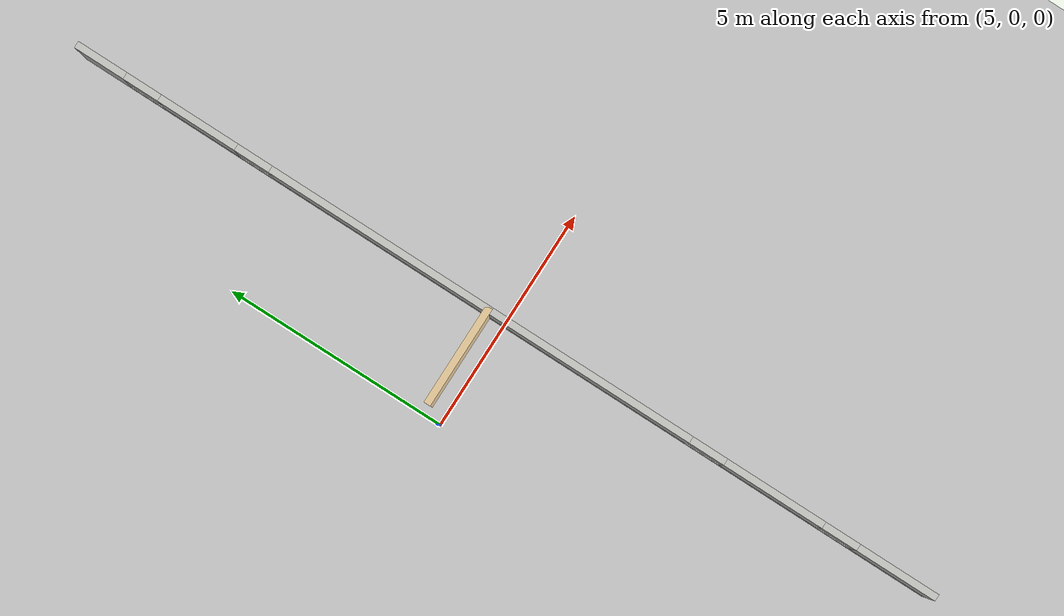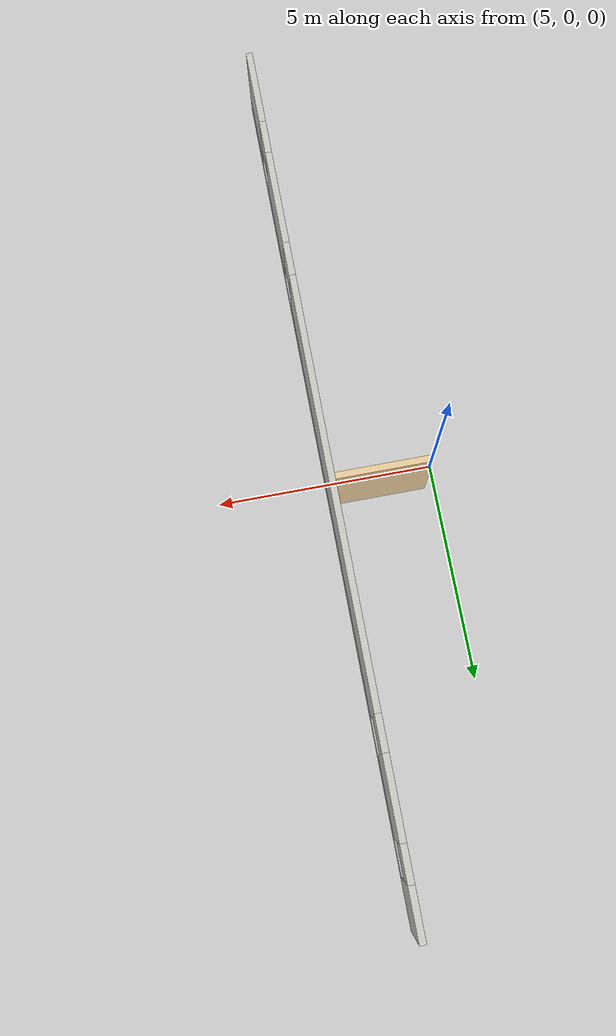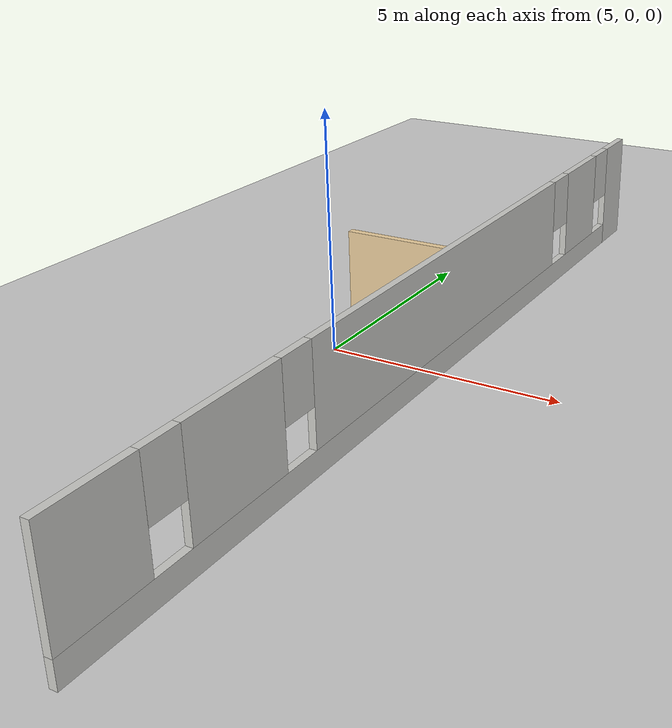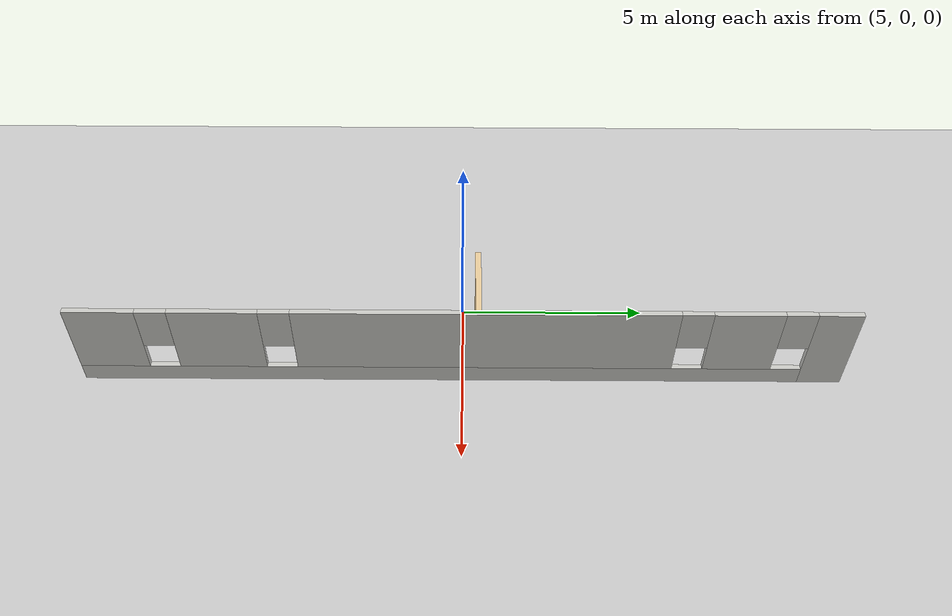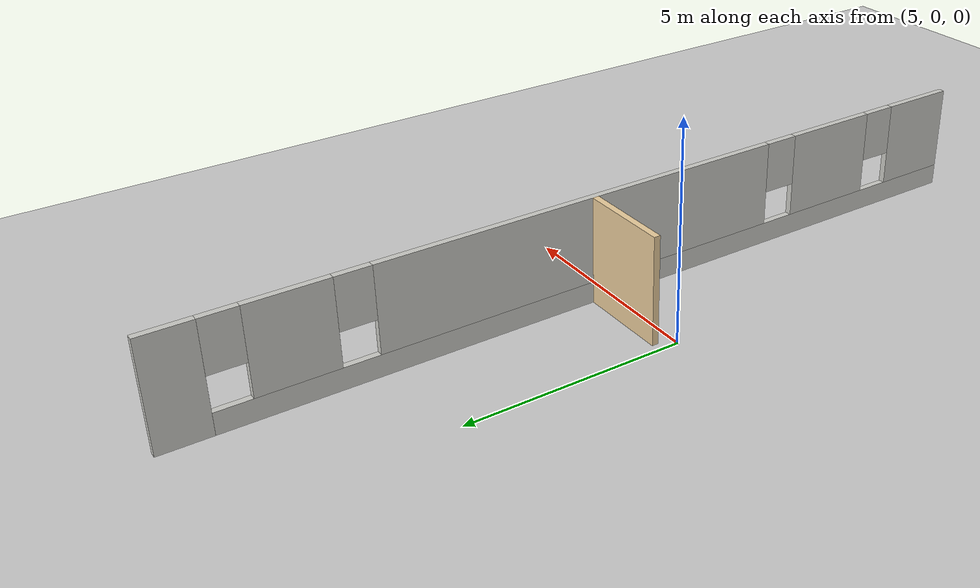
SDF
<sdf version="1.6">
 <world name="default">
  <model name="ground_plane">
   <static>1</static>
   <link name="link">
    <collision name="collision">
     <geometry><plane><normal>0 0 1</normal><size>100 100</size></plane></geometry>
     <surface>
      <contact><collide_bitmask>65535</collide_bitmask></contact>
      <friction><ode><mu>100</mu><mu2>50</mu2></ode></friction>
     </surface>
    </collision>
    <visual name="visual">
     <cast_shadows>0</cast_shadows>
     <geometry><plane><normal>0 0 1</normal><size>100 100</size></plane></geometry>
     <material>
      <script><uri>file://media/materials/scripts/gazebo.material</uri><name>Gazebo/Grey</name></script>
     </material>
    </visual>
   </link>
  </model>
  <model name="AutowayTower">
   <link name="Wall_0">
    <pose>0.012137 7.42869 0 0 -0 0</pose>
    <visual name="Wall_0_Visual_0">
     <pose>-9.43131 0 1.25 0 -0 0</pose>
     <geometry><box><size>1.13738 0.15 2.5</size></box></geometry>
     <material>
      <script><uri>file://media/materials/scripts/gazebo.material</uri><name>Gazebo/CeilingTiled</name></script>
      <ambient>1 1 1 1</ambient>
      <shader type="pixel"/>
      <diffuse>1 1 1 1</diffuse>
      <specular>0 0 0 1</specular>
      <emissive>0 0 0 1</emissive>
     </material>
     <meta><layer>0</layer></meta>
    </visual>
    <visual name="Wall_0_Visual_1">
     <pose>0.56869 0 0.25 0 -0 0</pose>
     <geometry><box><size>18.8626 0.15 0.5</size></box></geometry>
     <material>
      <script><uri>file://media/materials/scripts/gazebo.material</uri><name>Gazebo/CeilingTiled</name></script>
      <ambient>1 1 1 1</ambient>
      <shader type="pixel"/>
      <diffuse>1 1 1 1</diffuse>
      <specular>0 0 0 1</specular>
      <emissive>0 0 0 1</emissive>
     </material>
     <meta><layer>0</layer></meta>
    </visual>
    <visual name="Wall_0_Visual_2">
     <pose>-7.16836 0 1.5 0 -0 0</pose>
     <geometry><box><size>1.78853 0.15 2</size></box></geometry>
     <material>
      <script><uri>file://media/materials/scripts/gazebo.material</uri><name>Gazebo/CeilingTiled</name></script>
      <ambient>1 1 1 1</ambient>
      <shader type="pixel"/>
      <diffuse>1 1 1 1</diffuse>
      <specular>0 0 0 1</specular>
      <emissive>0 0 0 1</emissive>
     </material>
     <meta><layer>0</layer></meta>
    </visual>
    <visual name="Wall_0_Visual_3">
     <pose>-0.583346 0 1.5 0 -0 0</pose>
     <geometry><box><size>9.78149 0.15 2</size></box></geometry>
     <material>
      <script><uri>file://media/materials/scripts/gazebo.material</uri><name>Gazebo/CeilingTiled</name></script>
      <ambient>1 1 1 1</ambient>
      <shader type="pixel"/>
      <diffuse>1 1 1 1</diffuse>
      <specular>0 0 0 1</specular>
      <emissive>0 0 0 1</emissive>
     </material>
     <meta><layer>0</layer></meta>
    </visual>
    <visual name="Wall_0_Visual_4">
     <pose>6.24652 0 1.5 0 -0 0</pose>
     <geometry><box><size>2.27825 0.15 2</size></box></geometry>
     <material>
      <script><uri>file://media/materials/scripts/gazebo.material</uri><name>Gazebo/CeilingTiled</name></script>
      <ambient>1 1 1 1</ambient>
      <shader type="pixel"/>
      <diffuse>1 1 1 1</diffuse>
      <specular>0 0 0 1</specular>
      <emissive>0 0 0 1</emissive>
     </material>
     <meta><layer>0</layer></meta>
    </visual>
    <visual name="Wall_0_Visual_5">
     <pose>9.09282 0 1.5 0 -0 0</pose>
     <geometry><box><size>1.81435 0.15 2</size></box></geometry>
     <material>
      <script><uri>file://media/materials/scripts/gazebo.material</uri><name>Gazebo/CeilingTiled</name></script>
      <ambient>1 1 1 1</ambient>
      <shader type="pixel"/>
      <diffuse>1 1 1 1</diffuse>
      <specular>0 0 0 1</specular>
      <emissive>0 0 0 1</emissive>
     </material>
     <meta><layer>0</layer></meta>
    </visual>
    <visual name="Wall_0_Visual_6">
     <pose>-8.46262 0 1.9 0 -0 0</pose>
     <geometry><box><size>0.8 0.15 1.2</size></box></geometry>
     <material>
      <script><uri>file://media/materials/scripts/gazebo.material</uri><name>Gazebo/CeilingTiled</name></script>
      <ambient>1 1 1 1</ambient>
      <shader type="pixel"/>
      <diffuse>1 1 1 1</diffuse>
      <specular>0 0 0 1</specular>
      <emissive>0 0 0 1</emissive>
     </material>
     <meta><layer>0</layer></meta>
    </visual>
    <visual name="Wall_0_Visual_7">
     <pose>-5.87409 0 1.9 0 -0 0</pose>
     <geometry><box><size>0.8 0.15 1.2</size></box></geometry>
     <material>
      <script><uri>file://media/materials/scripts/gazebo.material</uri><name>Gazebo/CeilingTiled</name></script>
      <ambient>1 1 1 1</ambient>
      <shader type="pixel"/>
      <diffuse>1 1 1 1</diffuse>
      <specular>0 0 0 1</specular>
      <emissive>0 0 0 1</emissive>
     </material>
     <meta><layer>0</layer></meta>
    </visual>
    <visual name="Wall_0_Visual_8">
     <pose>4.7074 0 1.9 0 -0 0</pose>
     <geometry><box><size>0.8 0.15 1.2</size></box></geometry>
     <material>
      <script><uri>file://media/materials/scripts/gazebo.material</uri><name>Gazebo/CeilingTiled</name></script>
      <ambient>1 1 1 1</ambient>
      <shader type="pixel"/>
      <diffuse>1 1 1 1</diffuse>
      <specular>0 0 0 1</specular>
      <emissive>0 0 0 1</emissive>
     </material>
     <meta><layer>0</layer></meta>
    </visual>
    <visual name="Wall_0_Visual_9">
     <pose>7.78565 0 1.9 0 -0 0</pose>
     <geometry><box><size>0.8 0.15 1.2</size></box></geometry>
     <material>
      <script><uri>file://media/materials/scripts/gazebo.material</uri><name>Gazebo/CeilingTiled</name></script>
      <ambient>1 1 1 1</ambient>
      <shader type="pixel"/>
      <diffuse>1 1 1 1</diffuse>
      <specular>0 0 0 1</specular>
      <emissive>0 0 0 1</emissive>
     </material>
     <meta><layer>0</layer></meta>
    </visual>
    <collision name="Wall_0_Collision_6">
     <pose>-8.46262 0 1.9 0 -0 0</pose>
     <geometry><box><size>0.8 0.15 1.2</size></box></geometry>
     <surface>
      <friction>
       <ode><mu>1</mu><mu2>1</mu2><fdir1>0 0 0</fdir1><slip1>0</slip1><slip2>0</slip2></ode>
       <torsional>
        <coefficient>1</coefficient>
        <patch_radius>0</patch_radius>
        <surface_radius>0</surface_radius>
        <use_patch_radius>1</use_patch_radius>
        <ode><slip>0</slip></ode>
       </torsional>
      </friction>
      <bounce><restitution_coefficient>0</restitution_coefficient><threshold>1e+06</threshold></bounce>
      <contact>
       <collide_without_contact>0</collide_without_contact>
       <collide_without_contact_bitmask>1</collide_without_contact_bitmask>
       <collide_bitmask>1</collide_bitmask>
       <ode>
        <soft_cfm>0</soft_cfm>
        <soft_erp>0.2</soft_erp>
        <kp>1e+13</kp>
        <kd>1</kd>
        <max_vel>0.01</max_vel>
        <min_depth>0</min_depth>
       </ode>
       <bullet>
        <split_impulse>1</split_impulse>
        <split_impulse_penetration_threshold>-0.01</split_impulse_penetration_threshold>
        <soft_cfm>0</soft_cfm>
        <soft_erp>0.2</soft_erp>
        <kp>1e+13</kp>
        <kd>1</kd>
       </bullet>
      </contact>
     </surface>
    </collision>
    <collision name="Wall_0_Collision_0">
     <pose>-9.43131 0 1.25 0 -0 0</pose>
     <geometry><box><size>1.13738 0.15 2.5</size></box></geometry>
     <surface>
      <friction>
       <ode><mu>1</mu><mu2>1</mu2><fdir1>0 0 0</fdir1><slip1>0</slip1><slip2>0</slip2></ode>
       <torsional>
        <coefficient>1</coefficient>
        <patch_radius>0</patch_radius>
        <surface_radius>0</surface_radius>
        <use_patch_radius>1</use_patch_radius>
        <ode><slip>0</slip></ode>
       </torsional>
      </friction>
      <bounce><restitution_coefficient>0</restitution_coefficient><threshold>1e+06</threshold></bounce>
      <contact>
       <collide_without_contact>0</collide_without_contact>
       <collide_without_contact_bitmask>1</collide_without_contact_bitmask>
       <collide_bitmask>1</collide_bitmask>
       <ode>
        <soft_cfm>0</soft_cfm>
        <soft_erp>0.2</soft_erp>
        <kp>1e+13</kp>
        <kd>1</kd>
        <max_vel>0.01</max_vel>
        <min_depth>0</min_depth>
       </ode>
       <bullet>
        <split_impulse>1</split_impulse>
        <split_impulse_penetration_threshold>-0.01</split_impulse_penetration_threshold>
        <soft_cfm>0</soft_cfm>
        <soft_erp>0.2</soft_erp>
        <kp>1e+13</kp>
        <kd>1</kd>
       </bullet>
      </contact>
     </surface>
    </collision>
    <collision name="Wall_0_Collision_1">
     <pose>0.56869 0 0.25 0 -0 0</pose>
     <geometry><box><size>18.8626 0.15 0.5</size></box></geometry>
     <surface>
      <friction>
       <ode><mu>1</mu><mu2>1</mu2><fdir1>0 0 0</fdir1><slip1>0</slip1><slip2>0</slip2></ode>
       <torsional>
        <coefficient>1</coefficient>
        <patch_radius>0</patch_radius>
        <surface_radius>0</surface_radius>
        <use_patch_radius>1</use_patch_radius>
        <ode><slip>0</slip></ode>
       </torsional>
      </friction>
      <bounce><restitution_coefficient>0</restitution_coefficient><threshold>1e+06</threshold></bounce>
      <contact>
       <collide_without_contact>0</collide_without_contact>
       <collide_without_contact_bitmask>1</collide_without_contact_bitmask>
       <collide_bitmask>1</collide_bitmask>
       <ode>
        <soft_cfm>0</soft_cfm>
        <soft_erp>0.2</soft_erp>
        <kp>1e+13</kp>
        <kd>1</kd>
        <max_vel>0.01</max_vel>
        <min_depth>0</min_depth>
       </ode>
       <bullet>
        <split_impulse>1</split_impulse>
        <split_impulse_penetration_threshold>-0.01</split_impulse_penetration_threshold>
        <soft_cfm>0</soft_cfm>
        <soft_erp>0.2</soft_erp>
        <kp>1e+13</kp>
        <kd>1</kd>
       </bullet>
      </contact>
     </surface>
    </collision>
    <collision name="Wall_0_Collision_2">
     <pose>-7.16836 0 1.5 0 -0 0</pose>
     <geometry><box><size>1.78853 0.15 2</size></box></geometry>
     <surface>
      <friction>
       <ode><mu>1</mu><mu2>1</mu2><fdir1>0 0 0</fdir1><slip1>0</slip1><slip2>0</slip2></ode>
       <torsional>
        <coefficient>1</coefficient>
        <patch_radius>0</patch_radius>
        <surface_radius>0</surface_radius>
        <use_patch_radius>1</use_patch_radius>
        <ode><slip>0</slip></ode>
       </torsional>
      </friction>
      <bounce><restitution_coefficient>0</restitution_coefficient><threshold>1e+06</threshold></bounce>
      <contact>
       <collide_without_contact>0</collide_without_contact>
       <collide_without_contact_bitmask>1</collide_without_contact_bitmask>
       <collide_bitmask>1</collide_bitmask>
       <ode>
        <soft_cfm>0</soft_cfm>
        <soft_erp>0.2</soft_erp>
        <kp>1e+13</kp>
        <kd>1</kd>
        <max_vel>0.01</max_vel>
        <min_depth>0</min_depth>
       </ode>
       <bullet>
        <split_impulse>1</split_impulse>
        <split_impulse_penetration_threshold>-0.01</split_impulse_penetration_threshold>
        <soft_cfm>0</soft_cfm>
        <soft_erp>0.2</soft_erp>
        <kp>1e+13</kp>
        <kd>1</kd>
       </bullet>
      </contact>
     </surface>
    </collision>
    <collision name="Wall_0_Collision_3">
     <pose>-0.583346 0 1.5 0 -0 0</pose>
     <geometry><box><size>9.78149 0.15 2</size></box></geometry>
     <surface>
      <friction>
       <ode><mu>1</mu><mu2>1</mu2><fdir1>0 0 0</fdir1><slip1>0</slip1><slip2>0</slip2></ode>
       <torsional>
        <coefficient>1</coefficient>
        <patch_radius>0</patch_radius>
        <surface_radius>0</surface_radius>
        <use_patch_radius>1</use_patch_radius>
        <ode><slip>0</slip></ode>
       </torsional>
      </friction>
      <bounce><restitution_coefficient>0</restitution_coefficient><threshold>1e+06</threshold></bounce>
      <contact>
       <collide_without_contact>0</collide_without_contact>
       <collide_without_contact_bitmask>1</collide_without_contact_bitmask>
       <collide_bitmask>1</collide_bitmask>
       <ode>
        <soft_cfm>0</soft_cfm>
        <soft_erp>0.2</soft_erp>
        <kp>1e+13</kp>
        <kd>1</kd>
        <max_vel>0.01</max_vel>
        <min_depth>0</min_depth>
       </ode>
       <bullet>
        <split_impulse>1</split_impulse>
        <split_impulse_penetration_threshold>-0.01</split_impulse_penetration_threshold>
        <soft_cfm>0</soft_cfm>
        <soft_erp>0.2</soft_erp>
        <kp>1e+13</kp>
        <kd>1</kd>
       </bullet>
      </contact>
     </surface>
    </collision>
    <collision name="Wall_0_Collision_4">
     <pose>6.24652 0 1.5 0 -0 0</pose>
     <geometry><box><size>2.27825 0.15 2</size></box></geometry>
     <surface>
      <friction>
       <ode><mu>1</mu><mu2>1</mu2><fdir1>0 0 0</fdir1><slip1>0</slip1><slip2>0</slip2></ode>
       <torsional>
        <coefficient>1</coefficient>
        <patch_radius>0</patch_radius>
        <surface_radius>0</surface_radius>
        <use_patch_radius>1</use_patch_radius>
        <ode><slip>0</slip></ode>
       </torsional>
      </friction>
      <bounce><restitution_coefficient>0</restitution_coefficient><threshold>1e+06</threshold></bounce>
      <contact>
       <collide_without_contact>0</collide_without_contact>
       <collide_without_contact_bitmask>1</collide_without_contact_bitmask>
       <collide_bitmask>1</collide_bitmask>
       <ode>
        <soft_cfm>0</soft_cfm>
        <soft_erp>0.2</soft_erp>
        <kp>1e+13</kp>
        <kd>1</kd>
        <max_vel>0.01</max_vel>
        <min_depth>0</min_depth>
       </ode>
       <bullet>
        <split_impulse>1</split_impulse>
        <split_impulse_penetration_threshold>-0.01</split_impulse_penetration_threshold>
        <soft_cfm>0</soft_cfm>
        <soft_erp>0.2</soft_erp>
        <kp>1e+13</kp>
        <kd>1</kd>
       </bullet>
      </contact>
     </surface>
    </collision>
    <collision name="Wall_0_Collision_5">
     <pose>9.09282 0 1.5 0 -0 0</pose>
     <geometry><box><size>1.81435 0.15 2</size></box></geometry>
     <surface>
      <friction>
       <ode><mu>1</mu><mu2>1</mu2><fdir1>0 0 0</fdir1><slip1>0</slip1><slip2>0</slip2></ode>
       <torsional>
        <coefficient>1</coefficient>
        <patch_radius>0</patch_radius>
        <surface_radius>0</surface_radius>
        <use_patch_radius>1</use_patch_radius>
        <ode><slip>0</slip></ode>
       </torsional>
      </friction>
      <bounce><restitution_coefficient>0</restitution_coefficient><threshold>1e+06</threshold></bounce>
      <contact>
       <collide_without_contact>0</collide_without_contact>
       <collide_without_contact_bitmask>1</collide_without_contact_bitmask>
       <collide_bitmask>1</collide_bitmask>
       <ode>
        <soft_cfm>0</soft_cfm>
        <soft_erp>0.2</soft_erp>
        <kp>1e+13</kp>
        <kd>1</kd>
        <max_vel>0.01</max_vel>
        <min_depth>0</min_depth>
       </ode>
       <bullet>
        <split_impulse>1</split_impulse>
        <split_impulse_penetration_threshold>-0.01</split_impulse_penetration_threshold>
        <soft_cfm>0</soft_cfm>
        <soft_erp>0.2</soft_erp>
        <kp>1e+13</kp>
        <kd>1</kd>
       </bullet>
      </contact>
     </surface>
    </collision>
    <collision name="Wall_0_Collision_7">
     <pose>-5.87409 0 1.9 0 -0 0</pose>
     <geometry><box><size>0.8 0.15 1.2</size></box></geometry>
     <surface>
      <friction>
       <ode><mu>1</mu><mu2>1</mu2><fdir1>0 0 0</fdir1><slip1>0</slip1><slip2>0</slip2></ode>
       <torsional>
        <coefficient>1</coefficient>
        <patch_radius>0</patch_radius>
        <surface_radius>0</surface_radius>
        <use_patch_radius>1</use_patch_radius>
        <ode><slip>0</slip></ode>
       </torsional>
      </friction>
      <bounce><restitution_coefficient>0</restitution_coefficient><threshold>1e+06</threshold></bounce>
      <contact>
       <collide_without_contact>0</collide_without_contact>
       <collide_without_contact_bitmask>1</collide_without_contact_bitmask>
       <collide_bitmask>1</collide_bitmask>
       <ode>
        <soft_cfm>0</soft_cfm>
        <soft_erp>0.2</soft_erp>
        <kp>1e+13</kp>
        <kd>1</kd>
        <max_vel>0.01</max_vel>
        <min_depth>0</min_depth>
       </ode>
       <bullet>
        <split_impulse>1</split_impulse>
        <split_impulse_penetration_threshold>-0.01</split_impulse_penetration_threshold>
        <soft_cfm>0</soft_cfm>
        <soft_erp>0.2</soft_erp>
        <kp>1e+13</kp>
        <kd>1</kd>
       </bullet>
      </contact>
     </surface>
    </collision>
    <collision name="Wall_0_Collision_9">
     <pose>7.78565 0 1.9 0 -0 0</pose>
     <geometry><box><size>0.8 0.15 1.2</size></box></geometry>
     <surface>
      <friction>
       <ode><mu>1</mu><mu2>1</mu2><fdir1>0 0 0</fdir1><slip1>0</slip1><slip2>0</slip2></ode>
       <torsional>
        <coefficient>1</coefficient>
        <patch_radius>0</patch_radius>
        <surface_radius>0</surface_radius>
        <use_patch_radius>1</use_patch_radius>
        <ode><slip>0</slip></ode>
       </torsional>
      </friction>
      <bounce><restitution_coefficient>0</restitution_coefficient><threshold>1e+06</threshold></bounce>
      <contact>
       <collide_without_contact>0</collide_without_contact>
       <collide_without_contact_bitmask>1</collide_without_contact_bitmask>
       <collide_bitmask>1</collide_bitmask>
       <ode>
        <soft_cfm>0</soft_cfm>
        <soft_erp>0.2</soft_erp>
        <kp>1e+13</kp>
        <kd>1</kd>
        <max_vel>0.01</max_vel>
        <min_depth>0</min_depth>
       </ode>
       <bullet>
        <split_impulse>1</split_impulse>
        <split_impulse_penetration_threshold>-0.01</split_impulse_penetration_threshold>
        <soft_cfm>0</soft_cfm>
        <soft_erp>0.2</soft_erp>
        <kp>1e+13</kp>
        <kd>1</kd>
       </bullet>
      </contact>
     </surface>
    </collision>
    <collision name="Wall_0_Collision_8">
     <pose>4.7074 0 1.9 0 -0 0</pose>
     <geometry><box><size>0.8 0.15 1.2</size></box></geometry>
     <surface>
      <friction>
       <ode><mu>1</mu><mu2>1</mu2><fdir1>0 0 0</fdir1><slip1>0</slip1><slip2>0</slip2></ode>
       <torsional>
        <coefficient>1</coefficient>
        <patch_radius>0</patch_radius>
        <surface_radius>0</surface_radius>
        <use_patch_radius>1</use_patch_radius>
        <ode><slip>0</slip></ode>
       </torsional>
      </friction>
      <bounce><restitution_coefficient>0</restitution_coefficient><threshold>1e+06</threshold></bounce>
      <contact>
       <collide_without_contact>0</collide_without_contact>
       <collide_without_contact_bitmask>1</collide_without_contact_bitmask>
       <collide_bitmask>1</collide_bitmask>
       <ode>
        <soft_cfm>0</soft_cfm>
        <soft_erp>0.2</soft_erp>
        <kp>1e+13</kp>
        <kd>1</kd>
        <max_vel>0.01</max_vel>
        <min_depth>0</min_depth>
       </ode>
       <bullet>
        <split_impulse>1</split_impulse>
        <split_impulse_penetration_threshold>-0.01</split_impulse_penetration_threshold>
        <soft_cfm>0</soft_cfm>
        <soft_erp>0.2</soft_erp>
        <kp>1e+13</kp>
        <kd>1</kd>
       </bullet>
      </contact>
     </surface>
    </collision>
   </link>
   <link name="Wall_17">
    <pose>-0.398124 6.34695 0 0 0 -1.5708</pose>
    <visual name="Wall_17_Visual">
     <pose>0 0 1.25 0 -0 0</pose>
     <geometry><box><size>2.25 0.15 2.5</size></box></geometry>
     <material>
      <script><uri>file://media/materials/scripts/gazebo.material</uri><name>Gazebo/Grey</name></script>
      <ambient>0.921569 0.807843 0.615686 1</ambient>
      <shader type="pixel"/>
      <diffuse>0.7 0.7 0.7 1</diffuse>
      <specular>0.01 0.01 0.01 1</specular>
      <emissive>0 0 0 1</emissive>
     </material>
     <meta><layer>0</layer></meta>
    </visual>
    <collision name="Wall_17_Collision">
     <pose>0 0 1.25 0 -0 0</pose>
     <geometry><box><size>2.25 0.15 2.5</size></box></geometry>
     <surface>
      <friction>
       <ode><mu>1</mu><mu2>1</mu2><fdir1>0 0 0</fdir1><slip1>0</slip1><slip2>0</slip2></ode>
       <torsional>
        <coefficient>1</coefficient>
        <patch_radius>0</patch_radius>
        <surface_radius>0</surface_radius>
        <use_patch_radius>1</use_patch_radius>
        <ode><slip>0</slip></ode>
       </torsional>
      </friction>
      <bounce><restitution_coefficient>0</restitution_coefficient><threshold>1e+06</threshold></bounce>
      <contact>
       <collide_without_contact>0</collide_without_contact>
       <collide_without_contact_bitmask>1</collide_without_contact_bitmask>
       <collide_bitmask>1</collide_bitmask>
       <ode>
        <soft_cfm>0</soft_cfm>
        <soft_erp>0.2</soft_erp>
        <kp>1e+13</kp>
        <kd>1</kd>
        <max_vel>0.01</max_vel>
        <min_depth>0</min_depth>
       </ode>
       <bullet>
        <split_impulse>1</split_impulse>
        <split_impulse_penetration_threshold>-0.01</split_impulse_penetration_threshold>
        <soft_cfm>0</soft_cfm>
        <soft_erp>0.2</soft_erp>
        <kp>1e+13</kp>
        <kd>1</kd>
       </bullet>
      </contact>
     </surface>
    </collision>
   </link>
   <static>1</static>
   <pose>3e-06 0 0 0 0 -1.57</pose>
  </model>
 </world>
</sdf>
